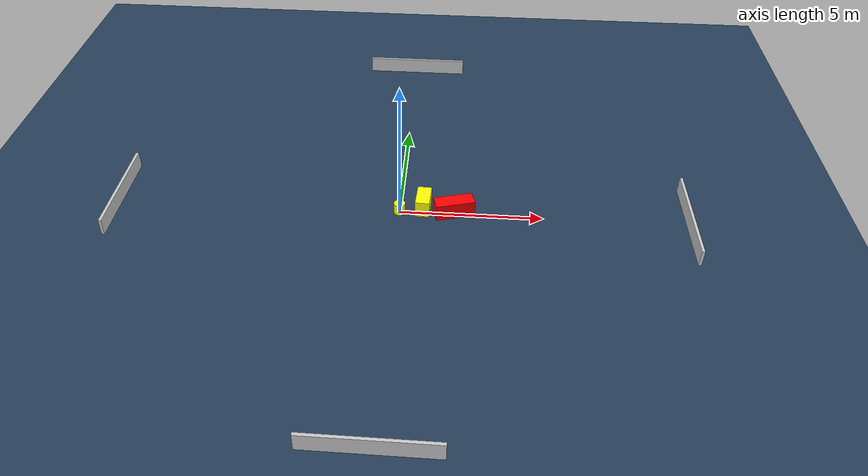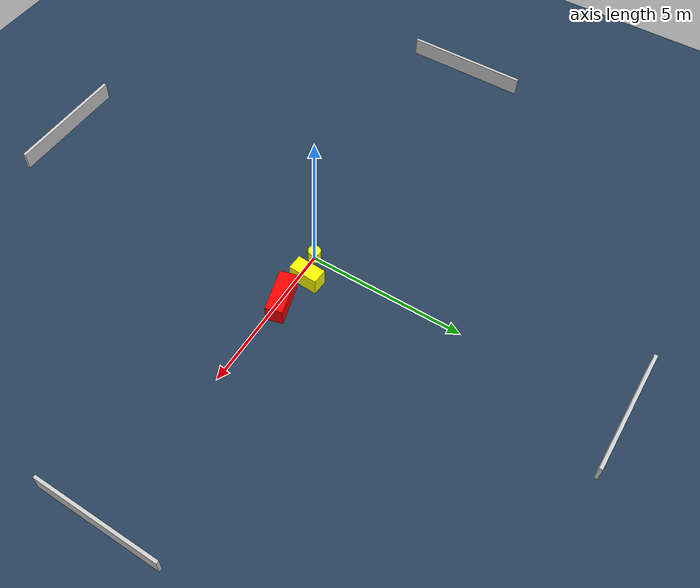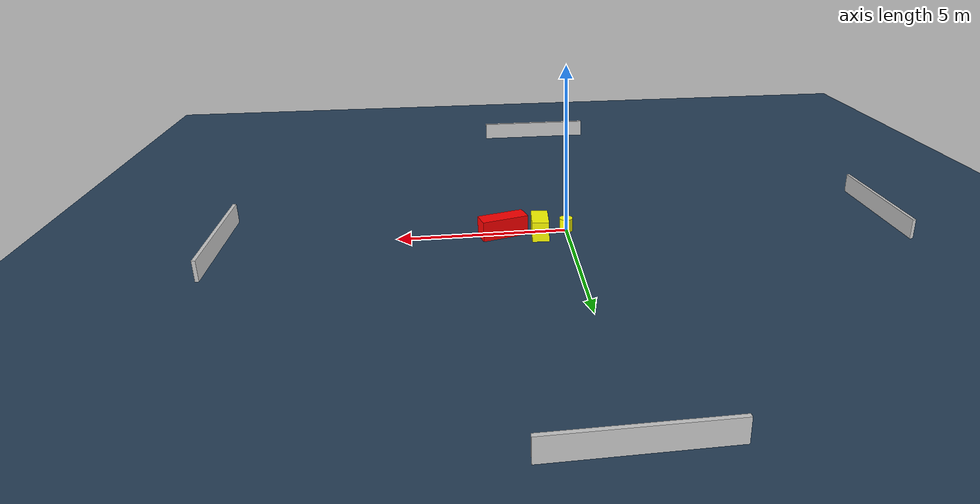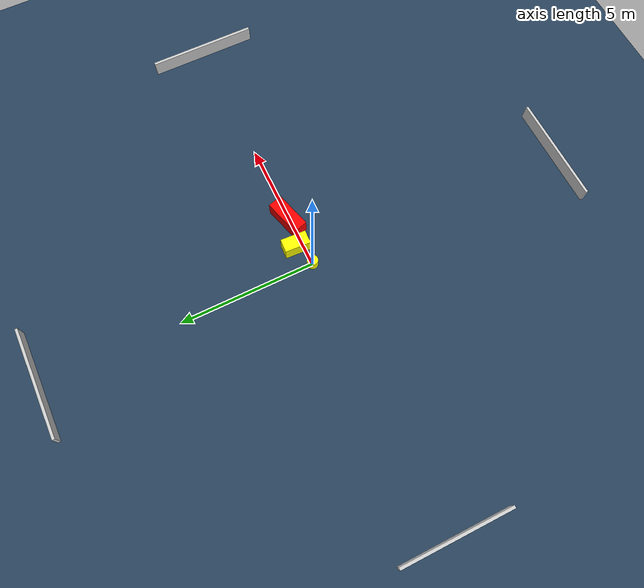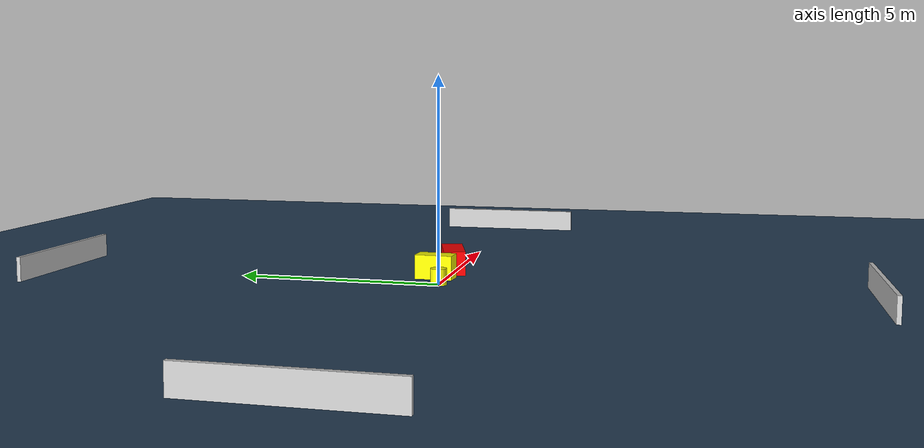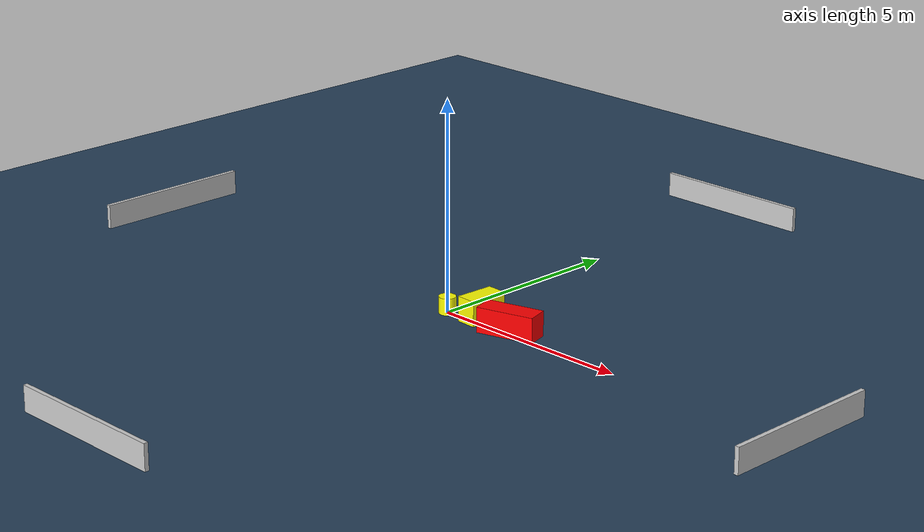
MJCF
<?xml version="1.0" ?>
<mujoco model="generated_environment">
  <option timestep="0.01" integrator="RK4" cone="elliptic"/>
  <default>
    <geom density="1"/>
  </default>
  <asset>
    <texture builtin="gradient" height="3072" name="skybox" rgb1="0.3 0.5 0.7" rgb2="0 0 0" type="skybox" width="512"/>
    <texture builtin="checker" height="300" name="groundplane" rgb1="0.2 0.3 0.4" rgb2="0.1 0.2 0.3" type="2d" width="300"/>
    <material name="groundplane" reflectance="0.2" texrepeat="5 5" texture="groundplane"/>
  </asset>
  <worldbody>
    <light dir="0 0 -1" directional="true" pos="0 0 1.5"/>
    <geom condim="3" friction="0.5 0.005 0.001" material="groundplane" name="floor" pos="0 0 0" size="0 0 0.05" type="plane"/>
    <body name="walls">
      <geom name="wall_1" condim="4" pos="-10.0 0.0 0.3" rgba="0.800000011920929 0.800000011920929 0.800000011920929 1.0" size="0.05 2.0 0.3" type="box"/>
      <geom name="wall_2" condim="4" pos="10.0 0.0 0.3" rgba="0.800000011920929 0.800000011920929 0.800000011920929 1.0" size="0.05 2.0 0.3" type="box"/>
      <geom name="wall_3" condim="4" pos="0.0 -10.0 0.3" rgba="0.800000011920929 0.800000011920929 0.800000011920929 1.0" size="2.0 0.05 0.3" type="box"/>
      <geom name="wall_4" condim="4" pos="0.0 10.0 0.3" rgba="0.800000011920929 0.800000011920929 0.800000011920929 1.0" size="2.0 0.05 0.3" type="box"/>
    </body>
    <body name="robot">
      <joint name="joint_x" type="slide" pos="0 0 0" axis="1 0 0"/>
      <joint name="joint_y" type="slide" pos="0 0 0" axis="0 1 0"/>
      <geom name="robot" type="cylinder" pos="0.0 0.0 0.2" size="0.2 0.2 0.0" mass="5.0" friction="1.0 0.005 0.0001" condim="4" rgba="1.0 1.0 0.0 1.0"/>
    </body>
    <body name="obstacle_1_movable">
      <geom name="obstacle_1_movable" condim="4" pos="0.8192811363641147 0.26725607244230837 0.3" euler="0 0 177.1017316419612" friction="0.0 0.005 0.001" rgba="1.0 1.0 0.0 1.0" size="0.24782336288135892 0.4702044776612852 0.3" type="box" mass="0.1"/>
      <joint type="free"/>
    </body>
    <body name="obstacle_2_static">
      <geom name="obstacle_2_static" condim="4" pos="1.9002307919986163 0.06992795069936736 0.3" euler="0 0 15.917903315318224" friction="0.0 0.005 0.001" rgba="1.0 0.0 0.0 1.0" size="0.6914507648588959 0.27080135870018446 0.3" type="box"/>
    </body>
  </worldbody>
  <actuator>
    <motor name="actuator_x" joint="joint_x" gear="1" ctrlrange="-1 1"/>
    <motor name="actuator_y" joint="joint_y" gear="1" ctrlrange="-1 1"/>
  </actuator>
</mujoco>
